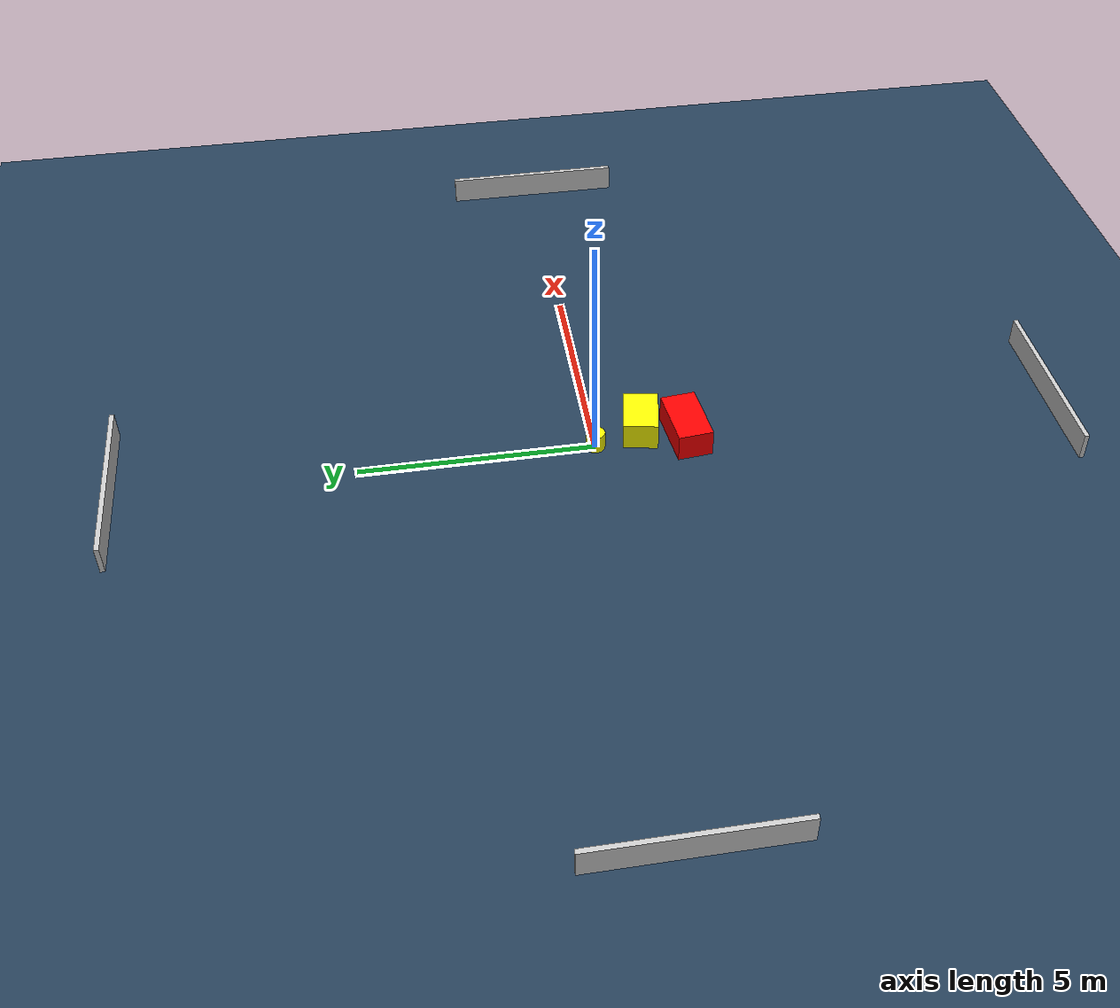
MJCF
<?xml version="1.0" ?>
<mujoco model="generated_environment">
  <option timestep="0.01" integrator="RK4" cone="elliptic"/>
  <default>
    <geom density="1"/>
  </default>
  <asset>
    <texture builtin="gradient" height="3072" name="skybox" rgb1="0.3 0.5 0.7" rgb2="0 0 0" type="skybox" width="512"/>
    <texture builtin="checker" height="300" name="groundplane" rgb1="0.2 0.3 0.4" rgb2="0.1 0.2 0.3" type="2d" width="300"/>
    <material name="groundplane" reflectance="0.2" texrepeat="5 5" texture="groundplane"/>
  </asset>
  <worldbody>
    <light dir="0 0 -1" directional="true" pos="0 0 1.5"/>
    <geom condim="3" friction="0.5 0.005 0.001" material="groundplane" name="floor" pos="0 0 0" size="0 0 0.05" type="plane"/>
    <body name="walls">
      <geom name="wall_1" condim="4" pos="-10.0 0.0 0.3" rgba="0.800000011920929 0.800000011920929 0.800000011920929 1.0" size="0.05 2.0 0.3" type="box"/>
      <geom name="wall_2" condim="4" pos="10.0 0.0 0.3" rgba="0.800000011920929 0.800000011920929 0.800000011920929 1.0" size="0.05 2.0 0.3" type="box"/>
      <geom name="wall_3" condim="4" pos="0.0 -10.0 0.3" rgba="0.800000011920929 0.800000011920929 0.800000011920929 1.0" size="2.0 0.05 0.3" type="box"/>
      <geom name="wall_4" condim="4" pos="0.0 10.0 0.3" rgba="0.800000011920929 0.800000011920929 0.800000011920929 1.0" size="2.0 0.05 0.3" type="box"/>
    </body>
    <body name="robot">
      <joint name="joint_x" type="slide" pos="0 0 0" axis="1 0 0"/>
      <joint name="joint_y" type="slide" pos="0 0 0" axis="0 1 0"/>
      <geom name="robot" type="cylinder" pos="0.0 0.0 0.2" size="0.2 0.2 0.0" mass="5.0" friction="1.0 0.005 0.0001" condim="4" rgba="1.0 1.0 0.0 1.0"/>
    </body>
    <body name="obstacle_1_movable">
      <geom name="obstacle_1_movable" condim="4" pos="0.3306576098995823 -1.0261150376537438 0.3" euler="0 0 259.82012742584857" friction="0.0 0.005 0.001" rgba="1.0 1.0 0.0 1.0" size="0.36835606766778006 0.5338893267169259 0.3" type="box" mass="0.1"/>
      <joint type="free"/>
    </body>
    <body name="obstacle_2_static">
      <geom name="obstacle_2_static" condim="4" pos="0.01847028801219065 -1.9508275794736294 0.3" euler="0 0 95.61145382679766" friction="0.0 0.005 0.001" rgba="1.0 0.0 0.0 1.0" size="0.3771705745686106 0.6734282190637239 0.3" type="box"/>
    </body>
  </worldbody>
  <actuator>
    <motor name="actuator_x" joint="joint_x" gear="1" ctrlrange="-1 1"/>
    <motor name="actuator_y" joint="joint_y" gear="1" ctrlrange="-1 1"/>
  </actuator>
</mujoco>
